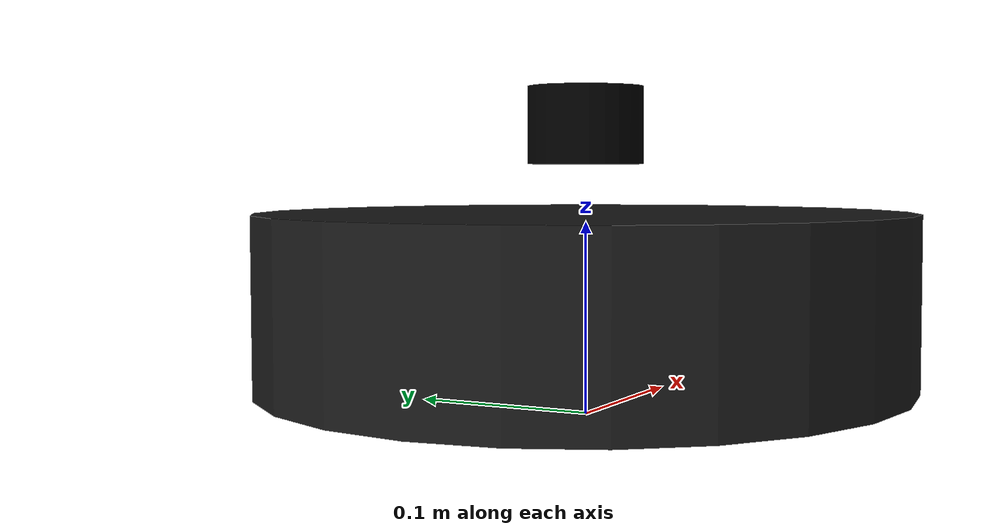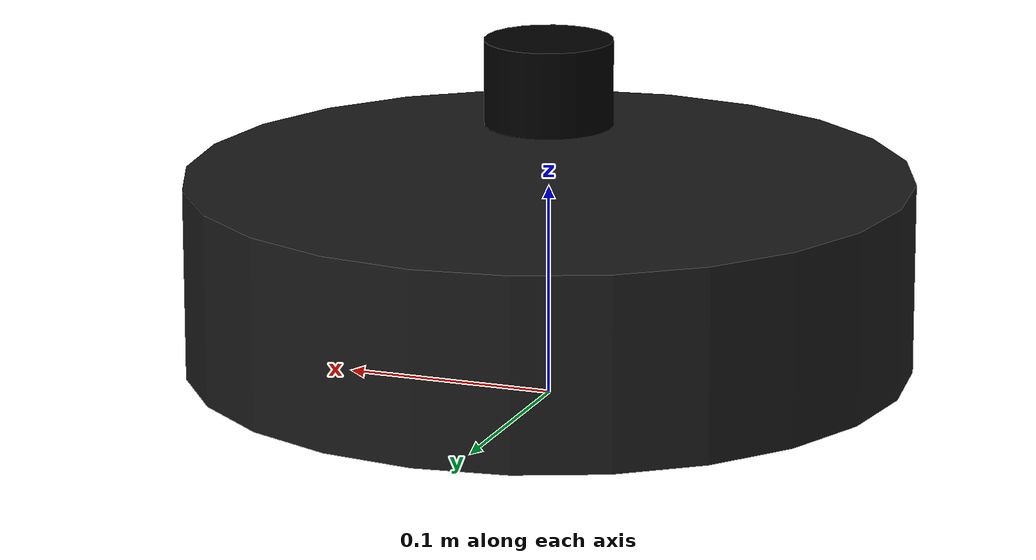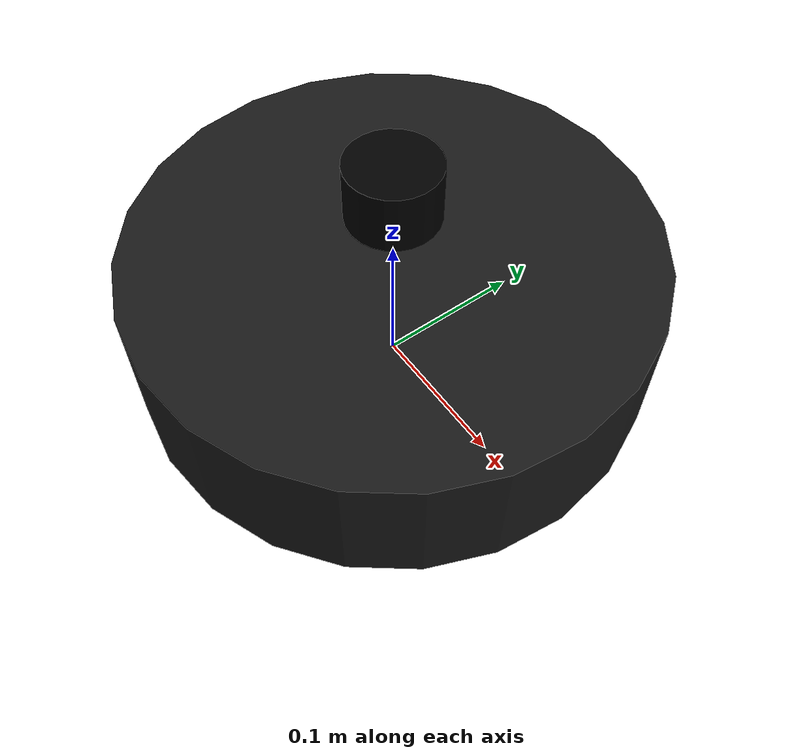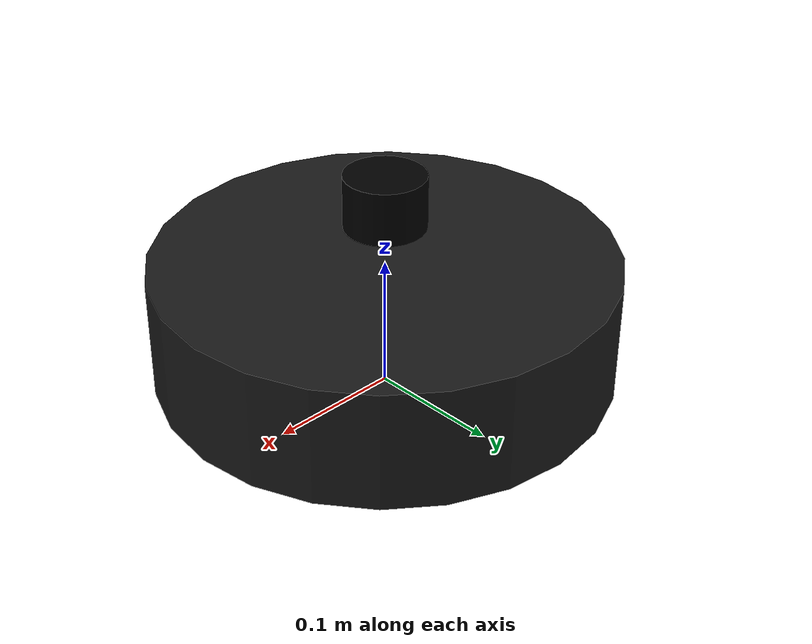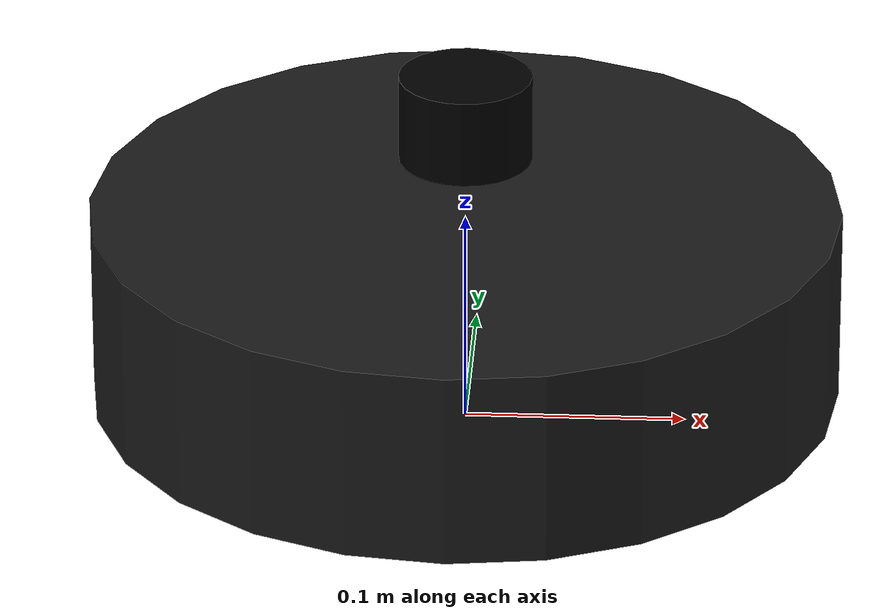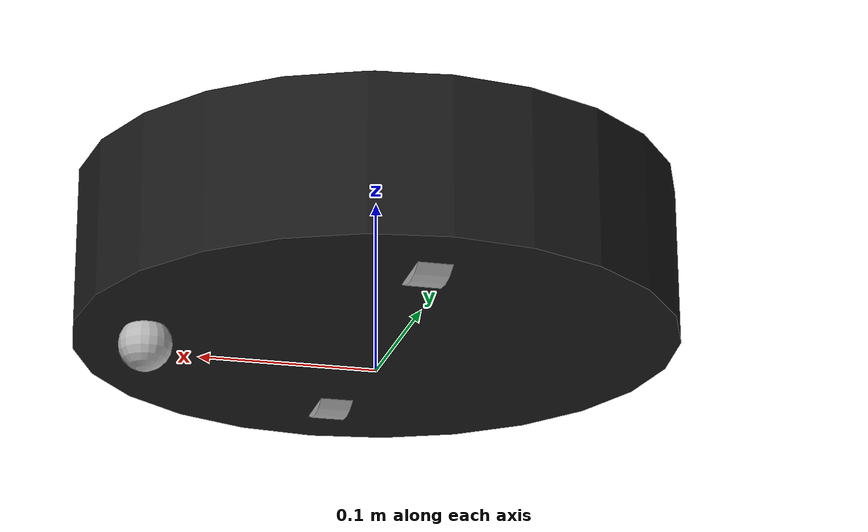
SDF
<?xml version="1.0" ?>
<sdf version="1.10">
  <model name="turtlebot4">
    <pose>0 0 0.01 0 0 0</pose>
    <static>false</static>
    <allow_auto_disable>true</allow_auto_disable>

    <!-- =================== Base =================== -->
    <link name="base_link">
      <pose>0 0 0.05 0 0 0</pose>
      <inertial>
        <mass>3.0</mass>
        <inertia>
          <!-- Approximated for a short cylinder M=3kg, r=0.17m, h=0.09m -->
          <ixx>0.012</ixx>
          <iyy>0.012</iyy>
          <izz>0.015</izz>
        </inertia>
      </inertial>
      <collision name="base_collision">
        <geometry>
          <cylinder>
            <radius>0.17</radius>
            <length>0.09</length>
          </cylinder>
        </geometry>
        <surface>
          <contact>
            <ode/>
          </contact>
          <friction>
            <ode/>
          </friction>
        </surface>
      </collision>
      <visual name="base_visual">
        <geometry>
          <cylinder>
            <radius>0.17</radius>
            <length>0.09</length>
          </cylinder>
        </geometry>
        <material>
          <ambient>0.2 0.2 0.2 1</ambient>
          <diffuse>0.1 0.1 0.1 1</diffuse>
        </material>
      </visual>
    </link>

    <!-- =================== Wheels =================== -->
    <link name="left_wheel_link">
      <pose>0 0.115 0.033 0 1.57079632679 0</pose>
      <inertial>
        <mass>0.25</mass>
        <inertia>
          <ixx>0.0006</ixx>
          <iyy>0.0006</iyy>
          <izz>0.0006</izz>
        </inertia>
      </inertial>
      <collision name="left_wheel_collision">
        <geometry>
          <cylinder>
            <radius>0.033</radius>
            <length>0.019</length>
          </cylinder>
        </geometry>
        <surface>
          <friction>
            <ode>
              <mu>1.0</mu>
              <mu2>1.0</mu2>
            </ode>
          </friction>
        </surface>
      </collision>
      <visual name="left_wheel_visual">
        <geometry>
          <cylinder>
            <radius>0.033</radius>
            <length>0.019</length>
          </cylinder>
        </geometry>
      </visual>
    </link>

    <joint name="left_wheel_joint" type="revolute">
      <parent>base_link</parent>
      <child>left_wheel_link</child>
      <pose>0 0 0 0 0 0</pose>
      <!-- Wheel spins around its local Y after we pitched wheel by +90deg -->
      <axis>
        <xyz>0 1 0</xyz>
        <limit>
          <lower>-1e16</lower>
          <upper>1e16</upper>
          <effort>5</effort>
          <velocity>100.0</velocity>
        </limit>
        <dynamics>
          <damping>0.0</damping>
        </dynamics>
      </axis>
    </joint>

    <link name="right_wheel_link">
      <pose>0 -0.115 0.033 0 1.57079632679 0</pose>
      <inertial>
        <mass>0.25</mass>
        <inertia>
          <ixx>0.0006</ixx>
          <iyy>0.0006</iyy>
          <izz>0.0006</izz>
        </inertia>
      </inertial>
      <collision name="right_wheel_collision">
        <geometry>
          <cylinder>
            <radius>0.033</radius>
            <length>0.019</length>
          </cylinder>
        </geometry>
        <surface>
          <friction>
            <ode>
              <mu>1.0</mu>
              <mu2>1.0</mu2>
            </ode>
          </friction>
        </surface>
      </collision>
      <visual name="right_wheel_visual">
        <geometry>
          <cylinder>
            <radius>0.033</radius>
            <length>0.019</length>
          </cylinder>
        </geometry>
      </visual>
    </link>

    <joint name="right_wheel_joint" type="revolute">
      <parent>base_link</parent>
      <child>right_wheel_link</child>
      <pose>0 0 0 0 0 0</pose>
      <axis>
        <xyz>0 1 0</xyz>
        <limit>
          <lower>-1e16</lower>
          <upper>1e16</upper>
          <effort>5</effort>
          <velocity>100.0</velocity>
        </limit>
        <dynamics>
          <damping>0.0</damping>
        </dynamics>
      </axis>
    </joint>

    <!-- =================== Passive caster =================== -->
    <link name="caster_link">
      <pose>0.13 0 -0.005 0 0 0</pose>
      <inertial>
        <mass>0.05</mass>
        <inertia>
          <ixx>1e-5</ixx>
          <iyy>1e-5</iyy>
          <izz>1e-5</izz>
        </inertia>
      </inertial>
      <collision name="caster_collision">
        <geometry>
          <sphere>
            <radius>0.015</radius>
          </sphere>
        </geometry>
        <surface>
          <friction>
            <ode>
              <mu>0.2</mu>
              <mu2>0.2</mu2>
            </ode>
          </friction>
        </surface>
      </collision>
      <visual name="caster_visual">
        <geometry>
          <sphere>
            <radius>0.015</radius>
          </sphere>
        </geometry>
      </visual>
    </link>

    <joint name="caster_joint" type="ball">
      <parent>base_link</parent>
      <child>caster_link</child>
      <pose>0 0 0 0 0 0</pose>
    </joint>

    <!-- =================== Lidar =================== -->
    <link name="lidar_link">
      <pose>0.0 0.0 0.14 0 0 0</pose>
      <inertial>
        <mass>0.1</mass>
        <inertia>
          <ixx>1e-4</ixx>
          <iyy>1e-4</iyy>
          <izz>1e-4</izz>
        </inertia>
      </inertial>
      <sensor name="scan" type="gpu_lidar">
        <update_rate>20</update_rate>
        <pose>0 0 0 0 0 0</pose>
        <topic>scan</topic>
        <ray>
          <scan>
            <horizontal>
              <samples>720</samples>
              <resolution>1</resolution>
              <min_angle>-3.14159</min_angle>
              <max_angle>3.14159</max_angle>
            </horizontal>
          </scan>
          <range>
            <min>0.05</min>
            <max>12.0</max>
            <resolution>0.01</resolution>
          </range>
          <noise>
            <type>gaussian</type>
            <mean>0.0</mean>
            <stddev>0.005</stddev>
          </noise>
        </ray>
      </sensor>
      <visual name="lidar_visual">
        <geometry>
          <cylinder>
            <radius>0.03</radius>
            <length>0.04</length>
          </cylinder>
        </geometry>
        <material>
          <ambient>0.0 0.0 0.0 1</ambient>
          <diffuse>0.0 0.0 0.0 1</diffuse>
        </material>
      </visual>
      <collision name="lidar_collision">
        <geometry>
          <cylinder>
            <radius>0.03</radius>
            <length>0.04</length>
          </cylinder>
        </geometry>
      </collision>
    </link>

    <joint name="lidar_joint" type="fixed">
      <parent>base_link</parent>
      <child>lidar_link</child>
    </joint>

    <frame name="base_footprint" attached_to="base_link">
      <pose>0 0 0 0 0 0</pose>
    </frame>

    <!-- =================== DiffDrive plugin placeholder (choose one) =================== -->

  </model>
</sdf>
